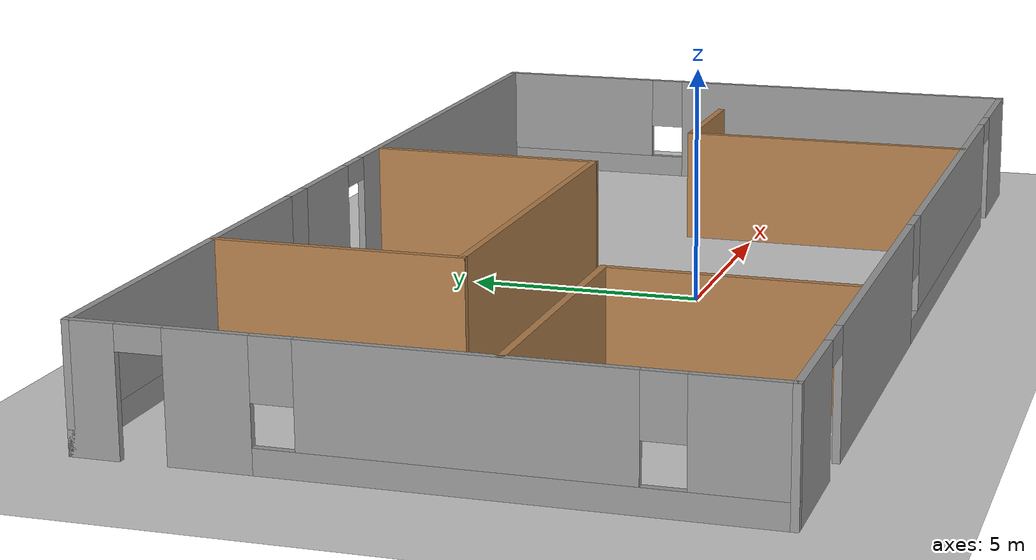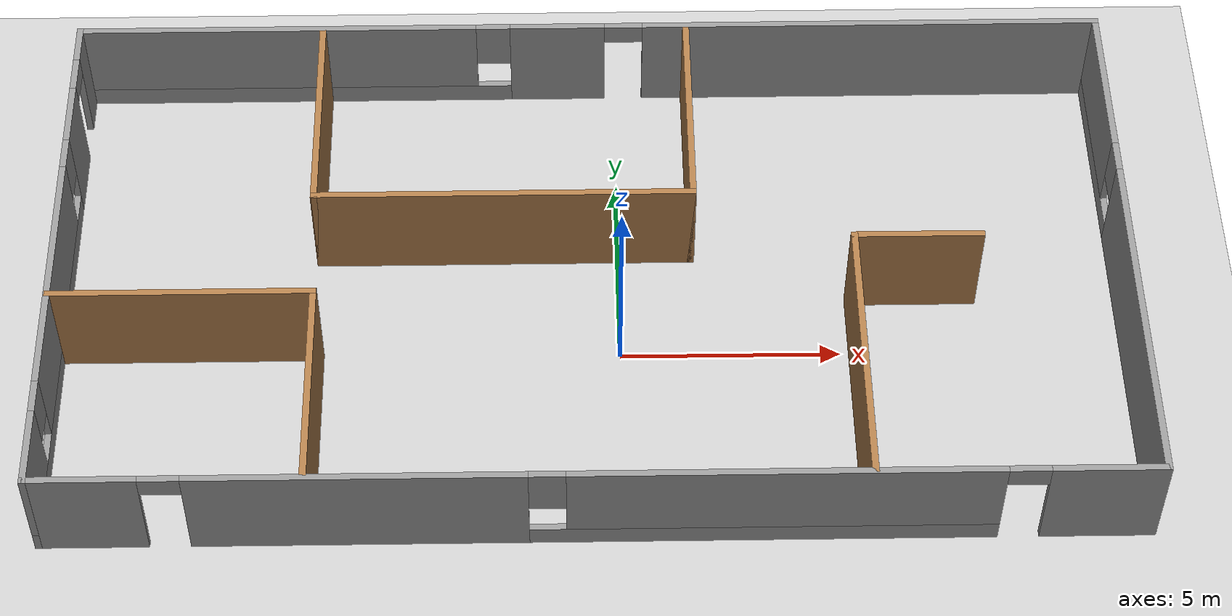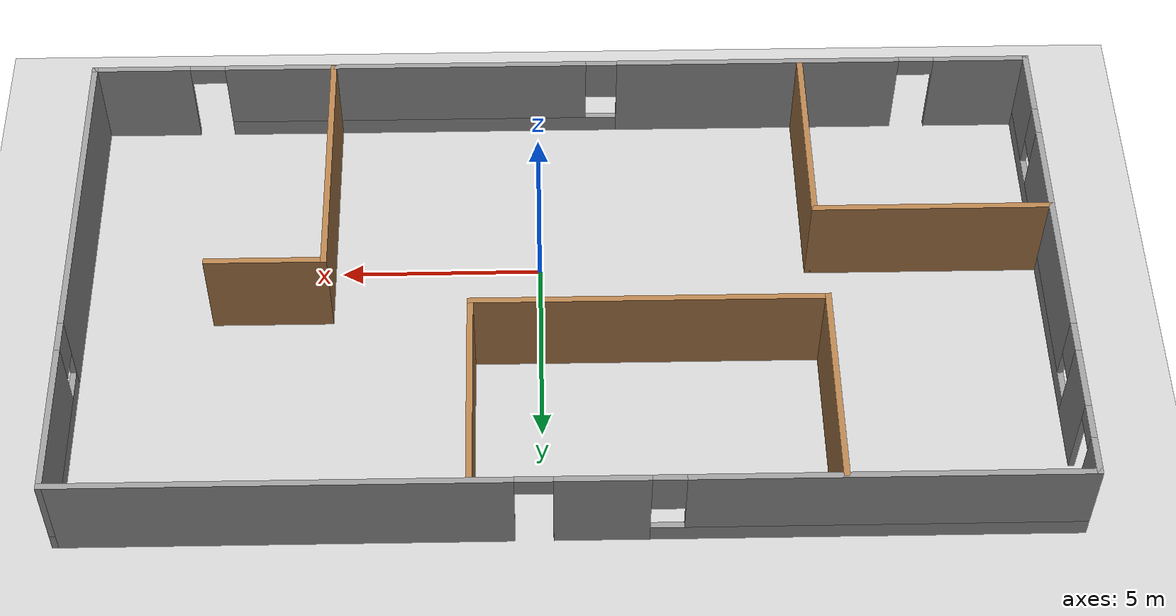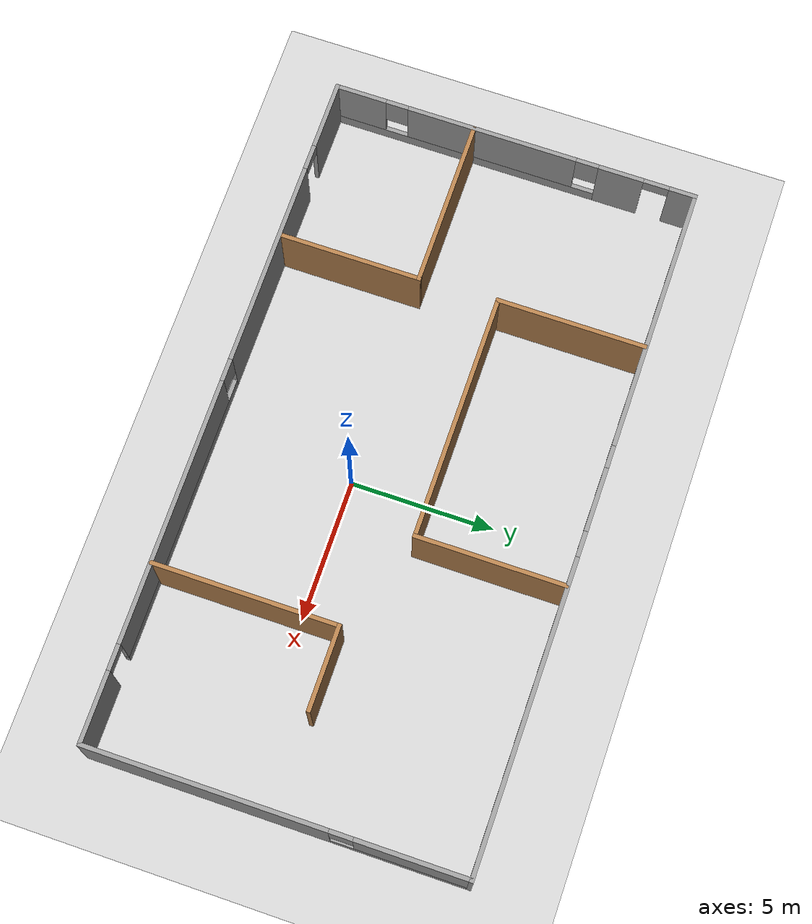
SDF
<sdf version="1.6">
 <world name="default">
  <light name="sun" type="directional">
   <pose>0 0 10 0 -0 0</pose>
   <diffuse>0.8 0.8 0.8 1</diffuse>
   <specular>0.2 0.2 0.2 1</specular>
   <attenuation>
    <range>1000</range>
    <constant>0.9</constant>
    <linear>0.01</linear>
    <quadratic>0.001</quadratic>
   </attenuation>
   <direction>-0.5 0.1 -0.9</direction>
  </light>
  <model name="ground_plane">
   <static>1</static>
   <link name="link">
    <collision name="collision">
     <geometry><plane><normal>0 0 1</normal><size>100 100</size></plane></geometry>
     <surface>
      <contact><collide_bitmask>65535</collide_bitmask></contact>
      <friction><ode><mu>100</mu><mu2>50</mu2></ode></friction>
     </surface>
    </collision>
    <visual name="visual">
     <cast_shadows>0</cast_shadows>
     <geometry><plane><normal>0 0 1</normal><size>100 100</size></plane></geometry>
     <material>
      <script><uri>file://media/materials/scripts/gazebo.material</uri><name>Gazebo/Grey</name></script>
     </material>
    </visual>
   </link>
  </model>
  <gravity>0 0 -9.8</gravity>
  <magnetic_field>6e-06 2.3e-05 -4.2e-05</magnetic_field>
  <atmosphere type="adiabatic"/>
  <physics name="default_physics" default="0" type="ode">
   <max_step_size>0.001</max_step_size>
   <real_time_factor>1</real_time_factor>
   <real_time_update_rate>1000</real_time_update_rate>
  </physics>
  <scene><ambient>0.4 0.4 0.4 1</ambient><background>0.7 0.7 0.7 1</background><shadows>1</shadows></scene>
  <spherical_coordinates>
   <surface_model>EARTH_WGS84</surface_model>
   <latitude_deg>0</latitude_deg>
   <longitude_deg>0</longitude_deg>
   <elevation>0</elevation>
   <heading_deg>0</heading_deg>
  </spherical_coordinates>
  <model name="building">
   <pose>-0.618156 1.52036 0 0 -0 0</pose>
   <link name="Wall_0">
    <pose>-12.05 0 0 0 0 -1.5708</pose>
    <visual name="Wall_0_Visual_0">
     <pose>-6.00515 0 1.25 0 -0 0</pose>
     <geometry><box><size>0.989706 0.15 2.5</size></box></geometry>
     <material>
      <script><uri>file://media/materials/scripts/gazebo.material</uri><name>Gazebo/Grey</name></script>
      <ambient>0.0823529 0.0823529 0.0823529 1</ambient>
     </material>
     <meta><layer>0</layer></meta>
    </visual>
    <collision name="Wall_0_Collision_0">
     <geometry><box><size>0.989706 0.15 2.5</size></box></geometry>
     <pose>-6.00515 0 1.25 0 -0 0</pose>
    </collision>
    <visual name="Wall_0_Visual_1">
     <pose>-3.80937 0 1.25 0 -0 0</pose>
     <geometry><box><size>1.60184 0.15 2.5</size></box></geometry>
     <material>
      <script><uri>file://media/materials/scripts/gazebo.material</uri><name>Gazebo/Grey</name></script>
      <ambient>0.0823529 0.0823529 0.0823529 1</ambient>
     </material>
     <meta><layer>0</layer></meta>
    </visual>
    <collision name="Wall_0_Collision_1">
     <geometry><box><size>1.60184 0.15 2.5</size></box></geometry>
     <pose>-3.80937 0 1.25 0 -0 0</pose>
    </collision>
    <visual name="Wall_0_Visual_2">
     <pose>1.74578 0 0.25 0 -0 0</pose>
     <geometry><box><size>9.50845 0.15 0.5</size></box></geometry>
     <material>
      <script><uri>file://media/materials/scripts/gazebo.material</uri><name>Gazebo/Grey</name></script>
      <ambient>0.0823529 0.0823529 0.0823529 1</ambient>
     </material>
     <meta><layer>0</layer></meta>
    </visual>
    <collision name="Wall_0_Collision_2">
     <geometry><box><size>9.50845 0.15 0.5</size></box></geometry>
     <pose>1.74578 0 0.25 0 -0 0</pose>
    </collision>
    <visual name="Wall_0_Visual_3">
     <pose>0.81488 0 1.5 0 -0 0</pose>
     <geometry><box><size>6.04666 0.15 2</size></box></geometry>
     <material>
      <script><uri>file://media/materials/scripts/gazebo.material</uri><name>Gazebo/Grey</name></script>
      <ambient>0.0823529 0.0823529 0.0823529 1</ambient>
     </material>
     <meta><layer>0</layer></meta>
    </visual>
    <collision name="Wall_0_Collision_3">
     <geometry><box><size>6.04666 0.15 2</size></box></geometry>
     <pose>0.81488 0 1.5 0 -0 0</pose>
    </collision>
    <visual name="Wall_0_Visual_4">
     <pose>5.56911 0 1.5 0 -0 0</pose>
     <geometry><box><size>1.86179 0.15 2</size></box></geometry>
     <material>
      <script><uri>file://media/materials/scripts/gazebo.material</uri><name>Gazebo/Grey</name></script>
      <ambient>0.0823529 0.0823529 0.0823529 1</ambient>
     </material>
     <meta><layer>0</layer></meta>
    </visual>
    <collision name="Wall_0_Collision_4">
     <geometry><box><size>1.86179 0.15 2</size></box></geometry>
     <pose>5.56911 0 1.5 0 -0 0</pose>
    </collision>
    <visual name="Wall_0_Visual_5">
     <pose>-2.60845 0 1.9 0 -0 0</pose>
     <geometry><box><size>0.8 0.15 1.2</size></box></geometry>
     <material>
      <script><uri>file://media/materials/scripts/gazebo.material</uri><name>Gazebo/Grey</name></script>
      <ambient>0.0823529 0.0823529 0.0823529 1</ambient>
     </material>
     <meta><layer>0</layer></meta>
    </visual>
    <collision name="Wall_0_Collision_5">
     <geometry><box><size>0.8 0.15 1.2</size></box></geometry>
     <pose>-2.60845 0 1.9 0 -0 0</pose>
    </collision>
    <visual name="Wall_0_Visual_6">
     <pose>4.23821 0 1.9 0 -0 0</pose>
     <geometry><box><size>0.8 0.15 1.2</size></box></geometry>
     <material>
      <script><uri>file://media/materials/scripts/gazebo.material</uri><name>Gazebo/Grey</name></script>
      <ambient>0.0823529 0.0823529 0.0823529 1</ambient>
     </material>
     <meta><layer>0</layer></meta>
    </visual>
    <collision name="Wall_0_Collision_6">
     <geometry><box><size>0.8 0.15 1.2</size></box></geometry>
     <pose>4.23821 0 1.9 0 -0 0</pose>
    </collision>
    <visual name="Wall_0_Visual_7">
     <pose>-5.06029 0 2.25 0 -0 0</pose>
     <geometry><box><size>0.9 0.15 0.5</size></box></geometry>
     <material>
      <script><uri>file://media/materials/scripts/gazebo.material</uri><name>Gazebo/Grey</name></script>
      <ambient>0.0823529 0.0823529 0.0823529 1</ambient>
     </material>
     <meta><layer>0</layer></meta>
    </visual>
    <collision name="Wall_0_Collision_7">
     <geometry><box><size>0.9 0.15 0.5</size></box></geometry>
     <pose>-5.06029 0 2.25 0 -0 0</pose>
    </collision>
   </link>
   <link name="Wall_1">
    <pose>0 -6.425 0 0 -0 0</pose>
    <visual name="Wall_1_Visual_0">
     <pose>-10.89 0 1.25 0 -0 0</pose>
     <geometry><box><size>2.47006 0.15 2.5</size></box></geometry>
     <material>
      <script><uri>file://media/materials/scripts/gazebo.material</uri><name>Gazebo/Grey</name></script>
      <ambient>0.0823529 0.0823529 0.0823529 1</ambient>
     </material>
     <meta><layer>0</layer></meta>
    </visual>
    <collision name="Wall_1_Collision_0">
     <geometry><box><size>2.47006 0.15 2.5</size></box></geometry>
     <pose>-10.89 0 1.25 0 -0 0</pose>
    </collision>
    <visual name="Wall_1_Visual_1">
     <pose>-5.09738 0 1.25 0 -0 0</pose>
     <geometry><box><size>7.3151 0.15 2.5</size></box></geometry>
     <material>
      <script><uri>file://media/materials/scripts/gazebo.material</uri><name>Gazebo/Grey</name></script>
      <ambient>0.0823529 0.0823529 0.0823529 1</ambient>
     </material>
     <meta><layer>0</layer></meta>
    </visual>
    <collision name="Wall_1_Collision_1">
     <geometry><box><size>7.3151 0.15 2.5</size></box></geometry>
     <pose>-5.09738 0 1.25 0 -0 0</pose>
    </collision>
    <visual name="Wall_1_Visual_2">
     <pose>10.8563 0 1.25 0 -0 0</pose>
     <geometry><box><size>2.53736 0.15 2.5</size></box></geometry>
     <material>
      <script><uri>file://media/materials/scripts/gazebo.material</uri><name>Gazebo/Grey</name></script>
      <ambient>0.0823529 0.0823529 0.0823529 1</ambient>
     </material>
     <meta><layer>0</layer></meta>
    </visual>
    <collision name="Wall_1_Collision_2">
     <geometry><box><size>2.53736 0.15 2.5</size></box></geometry>
     <pose>10.8563 0 1.25 0 -0 0</pose>
    </collision>
    <visual name="Wall_1_Visual_3">
     <pose>3.6239 0 0.25 0 -0 0</pose>
     <geometry><box><size>10.1275 0.15 0.5</size></box></geometry>
     <material>
      <script><uri>file://media/materials/scripts/gazebo.material</uri><name>Gazebo/Grey</name></script>
      <ambient>0.0823529 0.0823529 0.0823529 1</ambient>
     </material>
     <meta><layer>0</layer></meta>
    </visual>
    <collision name="Wall_1_Collision_3">
     <geometry><box><size>10.1275 0.15 0.5</size></box></geometry>
     <pose>3.6239 0 0.25 0 -0 0</pose>
    </collision>
    <visual name="Wall_1_Visual_4">
     <pose>4.0239 0 1.5 0 -0 0</pose>
     <geometry><box><size>9.32747 0.15 2</size></box></geometry>
     <material>
      <script><uri>file://media/materials/scripts/gazebo.material</uri><name>Gazebo/Grey</name></script>
      <ambient>0.0823529 0.0823529 0.0823529 1</ambient>
     </material>
     <meta><layer>0</layer></meta>
    </visual>
    <collision name="Wall_1_Collision_4">
     <geometry><box><size>9.32747 0.15 2</size></box></geometry>
     <pose>4.0239 0 1.5 0 -0 0</pose>
    </collision>
    <visual name="Wall_1_Visual_5">
     <pose>-1.03983 0 1.9 0 -0 0</pose>
     <geometry><box><size>0.8 0.15 1.2</size></box></geometry>
     <material>
      <script><uri>file://media/materials/scripts/gazebo.material</uri><name>Gazebo/Grey</name></script>
      <ambient>0.0823529 0.0823529 0.0823529 1</ambient>
     </material>
     <meta><layer>0</layer></meta>
    </visual>
    <collision name="Wall_1_Collision_5">
     <geometry><box><size>0.8 0.15 1.2</size></box></geometry>
     <pose>-1.03983 0 1.9 0 -0 0</pose>
    </collision>
    <visual name="Wall_1_Visual_6">
     <pose>-9.20494 0 2.25 0 -0 0</pose>
     <geometry><box><size>0.9 0.15 0.5</size></box></geometry>
     <material>
      <script><uri>file://media/materials/scripts/gazebo.material</uri><name>Gazebo/Grey</name></script>
      <ambient>0.0823529 0.0823529 0.0823529 1</ambient>
     </material>
     <meta><layer>0</layer></meta>
    </visual>
    <collision name="Wall_1_Collision_6">
     <geometry><box><size>0.9 0.15 0.5</size></box></geometry>
     <pose>-9.20494 0 2.25 0 -0 0</pose>
    </collision>
    <visual name="Wall_1_Visual_7">
     <pose>9.13764 0 2.25 0 -0 0</pose>
     <geometry><box><size>0.9 0.15 0.5</size></box></geometry>
     <material>
      <script><uri>file://media/materials/scripts/gazebo.material</uri><name>Gazebo/Grey</name></script>
      <ambient>0.0823529 0.0823529 0.0823529 1</ambient>
     </material>
     <meta><layer>0</layer></meta>
    </visual>
    <collision name="Wall_1_Collision_7">
     <geometry><box><size>0.9 0.15 0.5</size></box></geometry>
     <pose>9.13764 0 2.25 0 -0 0</pose>
    </collision>
   </link>
   <link name="Wall_10">
    <collision name="Wall_10_Collision">
     <geometry><box><size>3 0.15 2.5</size></box></geometry>
     <pose>0 0 1.25 0 -0 0</pose>
    </collision>
    <visual name="Wall_10_Visual">
     <pose>0 0 1.25 0 -0 0</pose>
     <geometry><box><size>3 0.15 2.5</size></box></geometry>
     <material>
      <script><uri>file://media/materials/scripts/gazebo.material</uri><name>Gazebo/Wood</name></script>
      <ambient>1 1 1 1</ambient>
     </material>
     <meta><layer>0</layer></meta>
    </visual>
    <pose>7.30122 -0.039357 0 0 -0 0</pose>
   </link>
   <link name="Wall_12">
    <collision name="Wall_12_Collision">
     <geometry><box><size>6 0.15 2.5</size></box></geometry>
     <pose>0 0 1.25 0 -0 0</pose>
    </collision>
    <visual name="Wall_12_Visual">
     <pose>0 0 1.25 0 -0 0</pose>
     <geometry><box><size>6 0.15 2.5</size></box></geometry>
     <material>
      <script><uri>file://media/materials/scripts/gazebo.material</uri><name>Gazebo/Wood</name></script>
      <ambient>1 1 1 1</ambient>
     </material>
     <meta><layer>0</layer></meta>
    </visual>
    <pose>-9.10187 -1.46254 0 0 -0 0</pose>
   </link>
   <link name="Wall_13">
    <collision name="Wall_13_Collision">
     <geometry><box><size>5 0.15 2.5</size></box></geometry>
     <pose>0 0 1.25 0 -0 0</pose>
    </collision>
    <visual name="Wall_13_Visual">
     <pose>0 0 1.25 0 -0 0</pose>
     <geometry><box><size>5 0.15 2.5</size></box></geometry>
     <material>
      <script><uri>file://media/materials/scripts/gazebo.material</uri><name>Gazebo/Wood</name></script>
      <ambient>1 1 1 1</ambient>
     </material>
     <meta><layer>0</layer></meta>
    </visual>
    <pose>-6.17687 -3.88754 0 0 0 -1.5708</pose>
   </link>
   <link name="Wall_2">
    <pose>12.05 0 0 0 -0 1.5708</pose>
    <visual name="Wall_2_Visual_0">
     <pose>-2.35395 0 1.25 0 -0 0</pose>
     <geometry><box><size>8.2921 0.15 2.5</size></box></geometry>
     <material>
      <script><uri>file://media/materials/scripts/gazebo.material</uri><name>Gazebo/Grey</name></script>
      <ambient>0.0823529 0.0823529 0.0823529 1</ambient>
     </material>
     <meta><layer>0</layer></meta>
    </visual>
    <collision name="Wall_2_Collision_0">
     <geometry><box><size>8.2921 0.15 2.5</size></box></geometry>
     <pose>-2.35395 0 1.25 0 -0 0</pose>
    </collision>
    <visual name="Wall_2_Visual_1">
     <pose>4.14605 0 0.25 0 -0 0</pose>
     <geometry><box><size>4.7079 0.15 0.5</size></box></geometry>
     <material>
      <script><uri>file://media/materials/scripts/gazebo.material</uri><name>Gazebo/Grey</name></script>
      <ambient>0.0823529 0.0823529 0.0823529 1</ambient>
     </material>
     <meta><layer>0</layer></meta>
    </visual>
    <collision name="Wall_2_Collision_1">
     <geometry><box><size>4.7079 0.15 0.5</size></box></geometry>
     <pose>4.14605 0 0.25 0 -0 0</pose>
    </collision>
    <visual name="Wall_2_Visual_2">
     <pose>4.54605 0 1.5 0 -0 0</pose>
     <geometry><box><size>3.9079 0.15 2</size></box></geometry>
     <material>
      <script><uri>file://media/materials/scripts/gazebo.material</uri><name>Gazebo/Grey</name></script>
      <ambient>0.0823529 0.0823529 0.0823529 1</ambient>
     </material>
     <meta><layer>0</layer></meta>
    </visual>
    <collision name="Wall_2_Collision_2">
     <geometry><box><size>3.9079 0.15 2</size></box></geometry>
     <pose>4.54605 0 1.5 0 -0 0</pose>
    </collision>
    <visual name="Wall_2_Visual_3">
     <pose>2.1921 0 1.9 0 -0 0</pose>
     <geometry><box><size>0.8 0.15 1.2</size></box></geometry>
     <material>
      <script><uri>file://media/materials/scripts/gazebo.material</uri><name>Gazebo/Grey</name></script>
      <ambient>0.0823529 0.0823529 0.0823529 1</ambient>
     </material>
     <meta><layer>0</layer></meta>
    </visual>
    <collision name="Wall_2_Collision_3">
     <geometry><box><size>0.8 0.15 1.2</size></box></geometry>
     <pose>2.1921 0 1.9 0 -0 0</pose>
    </collision>
   </link>
   <link name="Wall_3">
    <pose>0 6.425 0 0 -0 3.14159</pose>
    <visual name="Wall_3_Visual_0">
     <pose>-6.70437 0 1.25 0 -0 0</pose>
     <geometry><box><size>10.8413 0.15 2.5</size></box></geometry>
     <material>
      <script><uri>file://media/materials/scripts/gazebo.material</uri><name>Gazebo/Grey</name></script>
      <ambient>0.0823529 0.0823529 0.0823529 1</ambient>
     </material>
     <meta><layer>0</layer></meta>
    </visual>
    <collision name="Wall_3_Collision_0">
     <geometry><box><size>10.8413 0.15 2.5</size></box></geometry>
     <pose>-6.70437 0 1.25 0 -0 0</pose>
    </collision>
    <visual name="Wall_3_Visual_1">
     <pose>0.741002 0 1.25 0 -0 0</pose>
     <geometry><box><size>2.2495 0.15 2.5</size></box></geometry>
     <material>
      <script><uri>file://media/materials/scripts/gazebo.material</uri><name>Gazebo/Grey</name></script>
      <ambient>0.0823529 0.0823529 0.0823529 1</ambient>
     </material>
     <meta><layer>0</layer></meta>
    </visual>
    <collision name="Wall_3_Collision_1">
     <geometry><box><size>2.2495 0.15 2.5</size></box></geometry>
     <pose>0.741002 0 1.25 0 -0 0</pose>
    </collision>
    <visual name="Wall_3_Visual_2">
     <pose>6.99538 0 0.25 0 -0 0</pose>
     <geometry><box><size>10.2592 0.15 0.5</size></box></geometry>
     <material>
      <script><uri>file://media/materials/scripts/gazebo.material</uri><name>Gazebo/Grey</name></script>
      <ambient>0.0823529 0.0823529 0.0823529 1</ambient>
     </material>
     <meta><layer>0</layer></meta>
    </visual>
    <collision name="Wall_3_Collision_2">
     <geometry><box><size>10.2592 0.15 0.5</size></box></geometry>
     <pose>6.99538 0 0.25 0 -0 0</pose>
    </collision>
    <visual name="Wall_3_Visual_3">
     <pose>7.39538 0 1.5 0 -0 0</pose>
     <geometry><box><size>9.45925 0.15 2</size></box></geometry>
     <material>
      <script><uri>file://media/materials/scripts/gazebo.material</uri><name>Gazebo/Grey</name></script>
      <ambient>0.0823529 0.0823529 0.0823529 1</ambient>
     </material>
     <meta><layer>0</layer></meta>
    </visual>
    <collision name="Wall_3_Collision_3">
     <geometry><box><size>9.45925 0.15 2</size></box></geometry>
     <pose>7.39538 0 1.5 0 -0 0</pose>
    </collision>
    <visual name="Wall_3_Visual_4">
     <pose>2.26575 0 1.9 0 -0 0</pose>
     <geometry><box><size>0.8 0.15 1.2</size></box></geometry>
     <material>
      <script><uri>file://media/materials/scripts/gazebo.material</uri><name>Gazebo/Grey</name></script>
      <ambient>0.0823529 0.0823529 0.0823529 1</ambient>
     </material>
     <meta><layer>0</layer></meta>
    </visual>
    <collision name="Wall_3_Collision_4">
     <geometry><box><size>0.8 0.15 1.2</size></box></geometry>
     <pose>2.26575 0 1.9 0 -0 0</pose>
    </collision>
    <visual name="Wall_3_Visual_5">
     <pose>-0.833748 0 2.25 0 -0 0</pose>
     <geometry><box><size>0.9 0.15 0.5</size></box></geometry>
     <material>
      <script><uri>file://media/materials/scripts/gazebo.material</uri><name>Gazebo/Grey</name></script>
      <ambient>0.0823529 0.0823529 0.0823529 1</ambient>
     </material>
     <meta><layer>0</layer></meta>
    </visual>
    <collision name="Wall_3_Collision_5">
     <geometry><box><size>0.9 0.15 0.5</size></box></geometry>
     <pose>-0.833748 0 2.25 0 -0 0</pose>
    </collision>
   </link>
   <link name="Wall_5">
    <collision name="Wall_5_Collision">
     <geometry><box><size>5.25 0.15 2.5</size></box></geometry>
     <pose>0 0 1.25 0 -0 0</pose>
    </collision>
    <visual name="Wall_5_Visual">
     <pose>0 0 1.25 0 -0 0</pose>
     <geometry><box><size>5.25 0.15 2.5</size></box></geometry>
     <material>
      <script><uri>file://media/materials/scripts/gazebo.material</uri><name>Gazebo/Wood</name></script>
      <ambient>1 1 1 1</ambient>
     </material>
     <meta><layer>0</layer></meta>
    </visual>
    <pose>-6.29048 3.82874 0 0 0 -1.5708</pose>
   </link>
   <link name="Wall_6">
    <collision name="Wall_6_Collision">
     <geometry><box><size>8.75 0.15 2.5</size></box></geometry>
     <pose>0 0 1.25 0 -0 0</pose>
    </collision>
    <visual name="Wall_6_Visual">
     <pose>0 0 1.25 0 -0 0</pose>
     <geometry><box><size>8.75 0.15 2.5</size></box></geometry>
     <material>
      <script><uri>file://media/materials/scripts/gazebo.material</uri><name>Gazebo/Wood</name></script>
      <ambient>1 1 1 1</ambient>
     </material>
     <meta><layer>0</layer></meta>
    </visual>
    <pose>-1.99048 1.27874 0 0 -0 0</pose>
   </link>
   <link name="Wall_7">
    <collision name="Wall_7_Collision">
     <geometry><box><size>5.25 0.15 2.5</size></box></geometry>
     <pose>0 0 1.25 0 -0 0</pose>
    </collision>
    <visual name="Wall_7_Visual">
     <pose>0 0 1.25 0 -0 0</pose>
     <geometry><box><size>5.25 0.15 2.5</size></box></geometry>
     <material>
      <script><uri>file://media/materials/scripts/gazebo.material</uri><name>Gazebo/Wood</name></script>
      <ambient>1 1 1 1</ambient>
     </material>
     <meta><layer>0</layer></meta>
    </visual>
    <pose>2.30952 3.82874 0 0 -0 1.5708</pose>
   </link>
   <link name="Wall_9">
    <collision name="Wall_9_Collision">
     <geometry><box><size>6.5 0.15 2.5</size></box></geometry>
     <pose>0 0 1.25 0 -0 0</pose>
    </collision>
    <visual name="Wall_9_Visual">
     <pose>0 0 1.25 0 -0 0</pose>
     <geometry><box><size>6.5 0.15 2.5</size></box></geometry>
     <material>
      <script><uri>file://media/materials/scripts/gazebo.material</uri><name>Gazebo/Wood</name></script>
      <ambient>1 1 1 1</ambient>
     </material>
     <meta><layer>0</layer></meta>
    </visual>
    <pose>5.87622 -3.21436 0 0 -0 1.5708</pose>
   </link>
   <static>1</static>
  </model>
 </world>
</sdf>
